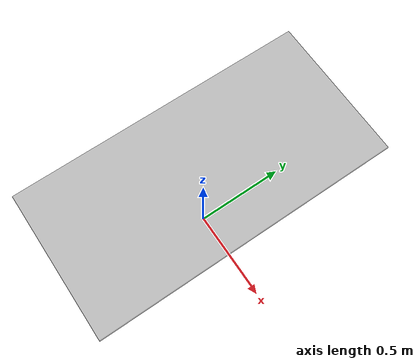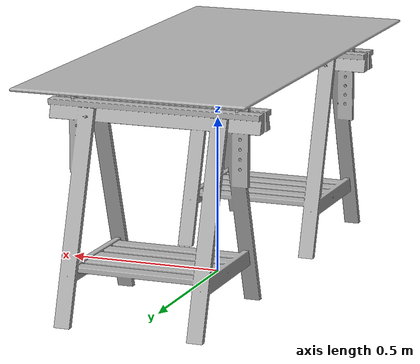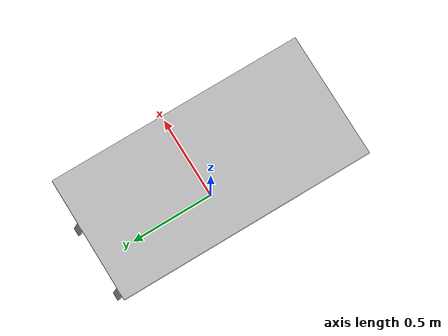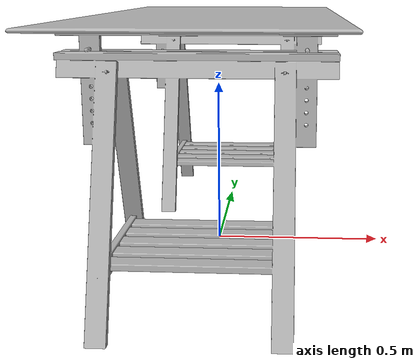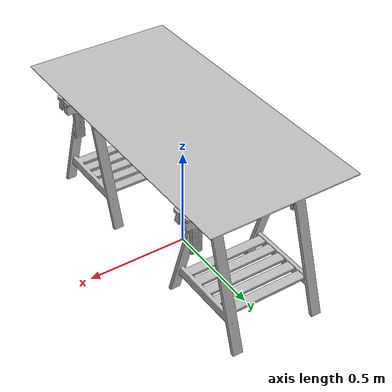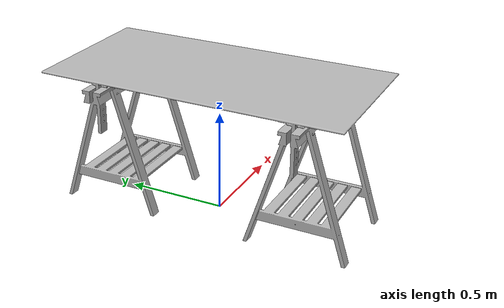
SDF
<?xml version='1.0'?>
<sdf version='1.4'>
  <model name='s__734'>
    <pose>0 0 0 0 0 0</pose>
    <static>true</static>
    <link name='link'>
      <collision name='collision'>
        <pose>0 0 0 0 0 0</pose>
        <geometry>
          <box>
            <size>0.730085 1.48 2</size>
          </box>
        </geometry>
      </collision>
      <visual name='visual'>
        <pose>0 0 0 0 0 0</pose>
        <geometry>
          <mesh><uri>model://s__734/s__734.dae</uri></mesh>
        </geometry>
      </visual>
    </link>
  </model>
</sdf>
